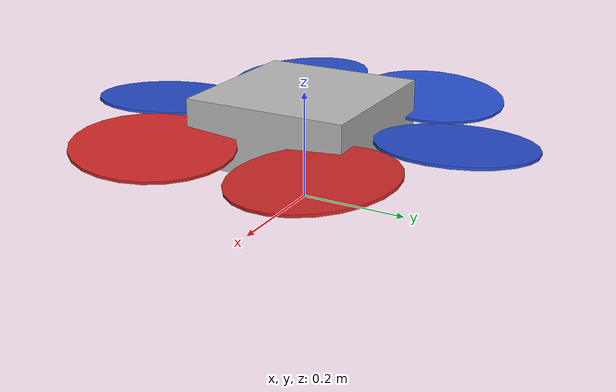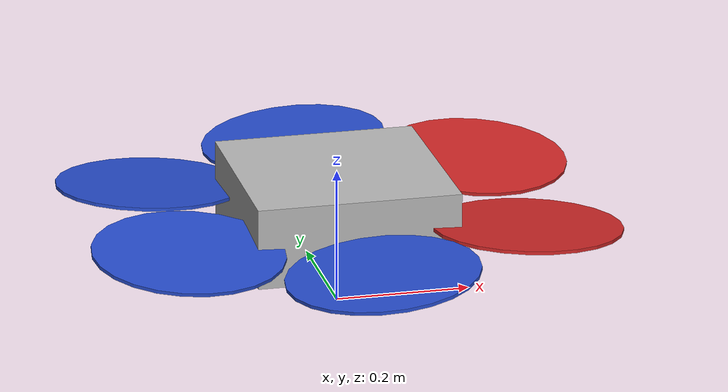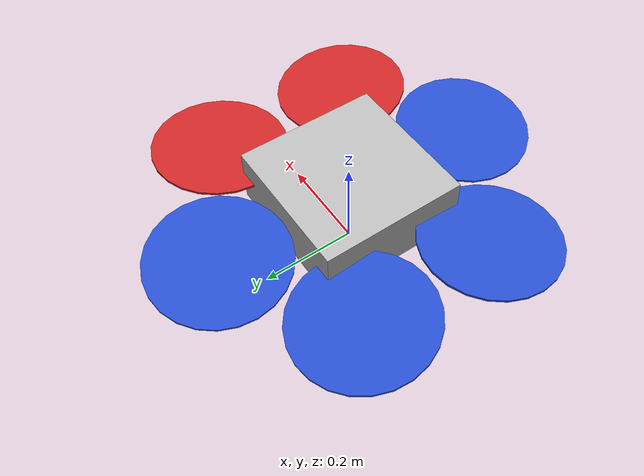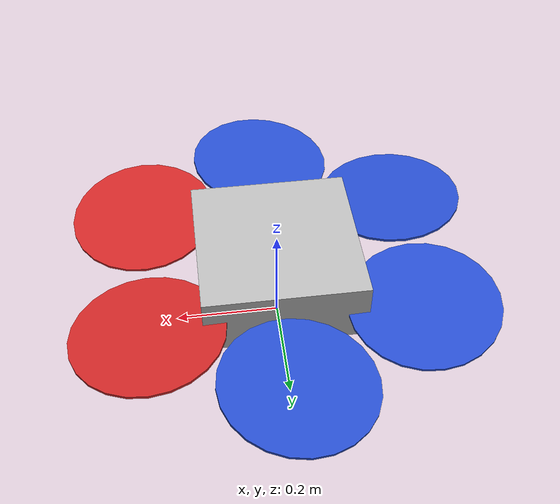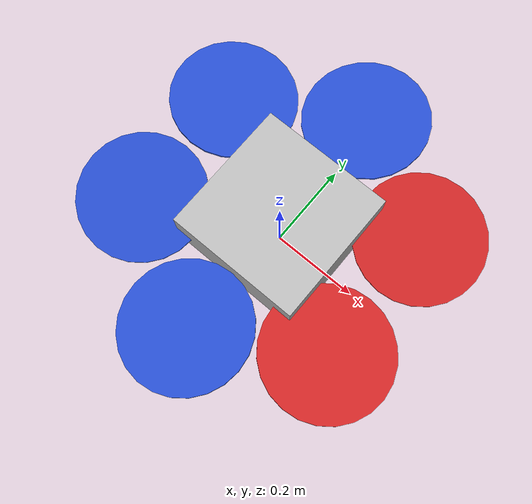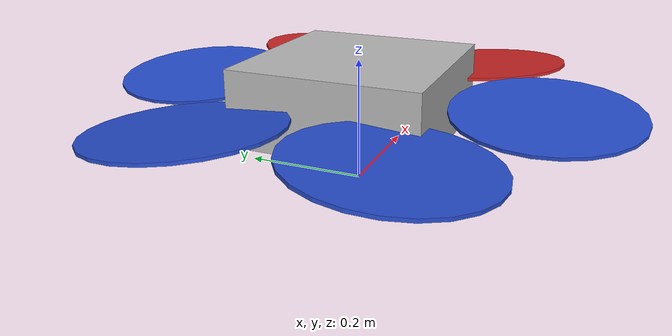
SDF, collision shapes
<?xml version="1.0"?>
<sdf version="1.8">
    <model name="hexrotor">
        <pose>0 0 0.121078 0 0 0</pose>
        <link name="base_link">
            <enable_wind>true</enable_wind>
            <pose frame="">0 0 0 0 -0 0</pose>
            <inertial>
                <pose frame="">0 0 0 0 -0 0</pose>
                <mass>3.42</mass>
                <inertia>
                    <ixx>0.075</ixx>
                    <ixy>0</ixy>
                    <ixz>0</ixz>
                    <iyy>0.075</iyy>
                    <iyz>0</iyz>
                    <izz>0.148916</izz>
                </inertia>
            </inertial>
            <collision name="base_link_inertia_collision">
                <pose frame="">0 0 0.025 0 -0 0</pose>
                <geometry>
                    <box>
                        <size>0.3 0.3 0.12</size>
                    </box>
                </geometry>
            </collision>

            <visual name="base_link_inertia_visual">
                <pose frame="">0 0 0 0 -0 0</pose>
                <geometry>
                    <mesh>
                        <scale>1 1 1</scale>
                        <uri>meshes/hexrotor.dae</uri>
                    </mesh>
                </geometry>
            </visual>
            <visual name="marker_visual_1">
                <pose frame="">-0.1 0 0.077 0 -0.1 0</pose>
                <geometry>
                    <mesh>
                        <scale>1 1 1</scale>
                        <uri>meshes/led.dae</uri>
                    </mesh>
                </geometry>
            </visual>
            <visual name="marker_visual_2">
                <pose frame="">-0.09 0.059 0.059 -0.785397 -0 0.2</pose>
                <geometry>
                    <mesh>
                        <scale>1 1 1</scale>
                        <uri>meshes/led.dae</uri>
                    </mesh>
                </geometry>
            </visual>
            <visual name="marker_visual_3">
                <pose frame="">-0.09 -0.059 0.059 0.785397 -0 -0.2</pose>
                <geometry>
                    <mesh>
                        <scale>1 1 1</scale>
                        <uri>meshes/led.dae</uri>
                    </mesh>
                </geometry>
            </visual>
            <sensor name="imu_sensor" type="imu">
                <always_on>1</always_on>
                <update_rate>250</update_rate>
                <imu>
                    <angular_velocity>
                        <x>
                            <noise type="gaussian">
                                <mean>0</mean>
                                <stddev>0.009</stddev>
                                <bias_mean>0.00075</bias_mean>
                                <bias_stddev>0.005</bias_stddev>
                                <dynamic_bias_stddev>0.00002</dynamic_bias_stddev>
                                <dynamic_bias_correlation_time>400.0</dynamic_bias_correlation_time>
                                <precision>0.00025</precision>
                            </noise>
                        </x>
                        <y>
                            <noise type="gaussian">
                                <mean>0</mean>
                                <stddev>0.009</stddev>
                                <bias_mean>0.00075</bias_mean>
                                <bias_stddev>0.005</bias_stddev>
                                <dynamic_bias_stddev>0.00002</dynamic_bias_stddev>
                                <dynamic_bias_correlation_time>400.0</dynamic_bias_correlation_time>
                                <precision>0.00025</precision>
                            </noise>
                        </y>
                        <z>
                            <noise type="gaussian">
                                <mean>0</mean>
                                <stddev>0.009</stddev>
                                <bias_mean>0.00075</bias_mean>
                                <bias_stddev>0.005</bias_stddev>
                                <dynamic_bias_stddev>0.00002</dynamic_bias_stddev>
                                <dynamic_bias_correlation_time>400.0</dynamic_bias_correlation_time>
                                <precision>0.00025</precision>
                            </noise>
                        </z>
                    </angular_velocity>
                    <linear_acceleration>
                        <x>
                            <noise type="gaussian">
                                <mean>0</mean>
                                <stddev>0.021</stddev>
                                <bias_mean>0.05</bias_mean>
                                <bias_stddev>0.0075</bias_stddev>
                                <dynamic_bias_stddev>0.000375</dynamic_bias_stddev>
                                <dynamic_bias_correlation_time>175.0</dynamic_bias_correlation_time>
                                <precision>0.005</precision>
                            </noise>
                        </x>
                        <y>
                            <noise type="gaussian">
                                <mean>0</mean>
                                <stddev>0.021</stddev>
                                <bias_mean>0.05</bias_mean>
                                <bias_stddev>0.0075</bias_stddev>
                                <dynamic_bias_stddev>0.000375</dynamic_bias_stddev>
                                <dynamic_bias_correlation_time>175.0</dynamic_bias_correlation_time>
                                <precision>0.005</precision>
                            </noise>
                        </y>
                        <z>
                            <noise type="gaussian">
                                <mean>0</mean>
                                <stddev>0.021</stddev>
                                <bias_mean>0.05</bias_mean>
                                <bias_stddev>0.0075</bias_stddev>
                                <dynamic_bias_stddev>0.000375</dynamic_bias_stddev>
                                <dynamic_bias_correlation_time>175.0</dynamic_bias_correlation_time>
                                <precision>0.005</precision>
                            </noise>
                        </z>
                    </linear_acceleration>
                </imu>
            </sensor>
            <sensor name="air_pressure" type="air_pressure">
                <always_on>1</always_on>
                <update_rate>20</update_rate>
                <air_pressure>
                    <reference_altitude>0</reference_altitude>
                    <noise type="gaussian">
                        <mean>0.00000008</mean>
                    </noise>
                </air_pressure>
            </sensor>
            <sensor name="magnetometer" type="magnetometer">
                <always_on>1</always_on>
                <update_rate>20</update_rate>
                <magnetometer>
                    <x>
                        <noise type="gaussian">
                            <mean>0.000000080</mean>
                            <bias_mean>0.000000400</bias_mean>
                        </noise>
                    </x>
                    <y>
                        <noise type="gaussian">
                            <mean>0.000000080</mean>
                            <bias_mean>0.000000400</bias_mean>
                        </noise>
                    </y>
                    <z>
                        <noise type="gaussian">
                            <mean>0.000000080</mean>
                            <bias_mean>0.000000400</bias_mean>
                        </noise>
                    </z>
                </magnetometer>
            </sensor>
        </link>

        <!-- gripper mount point -->
        <frame name="gripper_mount_point">
          <pose>0.0 0 -0.01 0 1.57 0</pose>
        </frame>

        <!-- Front payload slot -->
        <frame name="slot_0">
          <pose>0.15 0 -0.02 0 0 0</pose>
        </frame>

        <!-- Rear payload slot -->
        <frame name="slot_1">
          <pose>-0.14 0 -0.02 0 0 -3.14159</pose>
        </frame>

        <!-- Top payload slot -->
        <frame name="slot_2">
          <pose>0.0 0 0.09 0 -1.57 0</pose>
        </frame>

        <!-- Bottom payload slot -->
        <frame name="slot_3">
          <pose>0.06 0 -0.04 0 1.57 0</pose>
        </frame>

        <!-- Left payload slot -->
        <frame name="slot_4">
          <pose>0.05 0.10 -0.02 0 0 1.57</pose>
        </frame>

        <!-- Right payload slot -->
        <frame name="slot_5">
          <pose>0.05 -0.10 -0.02 0 0 -1.57</pose>
        </frame>

        <!-- Bottom left payload slot -->
        <frame name="slot_6">
          <pose>0.06 0.05 -0.04 0 1.57 0</pose>
        </frame>

        <!-- Bottom right payload slot -->
        <frame name="slot_7">
          <pose>0.06 -0.05 -0.04 0 1.57 0</pose>
        </frame>

        <link name="rotor_0">
            <pose frame="">0.247 0.1506 0.028 0.087267 0 0.523599</pose>
            <inertial>
                <pose frame="">0 0 0 0 -0 0</pose>
                <mass>0.005</mass>
                <inertia>
                    <ixx>9.75e-07</ixx>
                    <ixy>0</ixy>
                    <ixz>0</ixz>
                    <iyy>8.13545e-05</iyy>
                    <iyz>0</iyz>
                    <izz>8.22545e-05</izz>
                </inertia>
            </inertial>
            <collision name="rotor_0_collision">
                <pose frame="">0 0 0 0 -0 0</pose>
                <geometry>
                    <cylinder>
                        <length>0.005</length>
                        <radius>0.1397</radius>
                    </cylinder>
                </geometry>
                <surface>
                    <contact>
                        <ode/>
                    </contact>
                    <friction>
                        <ode/>
                    </friction>
                </surface>
            </collision>
            <visual name="rotor_0_visual">
                <pose frame="">0 0 0 0 -0 0</pose>
                <geometry>
                    <mesh>
                        <scale>1 1 1</scale>
                        <uri>meshes/neo11_propeller_ccw.dae</uri>
                    </mesh>
                </geometry>
                <material>
                    <diffuse>1 0 0 1</diffuse>
                    <script>
                        <name>Gazebo/Red</name>
                        <uri>file://media/materials/scripts/gazebo.material</uri>
                    </script>
                </material>
                <cast_shadows>0</cast_shadows>
            </visual>
            <gravity>1</gravity>
            <velocity_decay/>
        </link>
        <joint name="rotor_0_joint" type="revolute">
            <child>rotor_0</child>
            <parent>base_link</parent>
            <axis>
                <xyz>0 0 1</xyz>
                <limit>
                    <lower>-1e+16</lower>
                    <upper>1e+16</upper>
                </limit>
                <dynamics>
                    <spring_reference>0</spring_reference>
                    <spring_stiffness>0</spring_stiffness>
                </dynamics>
            </axis>
        </joint>
        <link name="rotor_1">
            <pose frame="">-0.00067 0.28929 0.028 0 -0.087267 0</pose>
            <inertial>
                <pose frame="">0 0 0 0 -0 0</pose>
                <mass>0.005</mass>
                <inertia>
                    <ixx>9.75e-07</ixx>
                    <ixy>0</ixy>
                    <ixz>0</ixz>
                    <iyy>8.13545e-05</iyy>
                    <iyz>0</iyz>
                    <izz>8.22545e-05</izz>
                </inertia>
            </inertial>
            <collision name="rotor_1_collision">
                <pose frame="">0 0 0 0 -0 0</pose>
                <geometry>
                    <cylinder>
                        <length>0.005</length>
                        <radius>0.1397</radius>
                    </cylinder>
                </geometry>
                <surface>
                    <contact>
                        <ode/>
                    </contact>
                    <friction>
                        <ode/>
                    </friction>
                </surface>
            </collision>
            <visual name="rotor_1_visual">
                <pose frame="">0 0 0 0 -0 0</pose>
                <geometry>
                    <mesh>
                        <scale>1 1 1</scale>
                        <uri>meshes/neo11_propeller_cw.dae</uri>
                    </mesh>
                </geometry>
                <material>
                    <diffuse>0 0 1 1</diffuse>
                    <script>
                        <name>Gazebo/Blue</name>
                        <uri>file://media/materials/scripts/gazebo.material</uri>
                    </script>
                </material>
                <cast_shadows>0</cast_shadows>
            </visual>
            <gravity>1</gravity>
            <velocity_decay/>
        </link>
        <joint name="rotor_1_joint" type="revolute">
            <child>rotor_1</child>
            <parent>base_link</parent>
            <axis>
                <xyz>0 0 1</xyz>
                <limit>
                    <lower>-1e+16</lower>
                    <upper>1e+16</upper>
                </limit>
                <dynamics>
                    <spring_reference>0</spring_reference>
                    <spring_stiffness>0</spring_stiffness>
                </dynamics>
            </axis>
        </joint>
        <link name="rotor_2">
            <pose frame="">-0.2501 0.1454 0.028 0.087267 -0 2.61799</pose>
            <inertial>
                <pose frame="">0 0 0 0 -0 0</pose>
                <mass>0.005</mass>
                <inertia>
                    <ixx>9.75e-07</ixx>
                    <ixy>0</ixy>
                    <ixz>0</ixz>
                    <iyy>8.13545e-05</iyy>
                    <iyz>0</iyz>
                    <izz>8.22545e-05</izz>
                </inertia>
            </inertial>
            <collision name="rotor_2_collision">
                <pose frame="">0 0 0 0 -0 0</pose>
                <geometry>
                    <cylinder>
                        <length>0.005</length>
                        <radius>0.1397</radius>
                    </cylinder>
                </geometry>
                <surface>
                    <contact>
                        <ode/>
                    </contact>
                    <friction>
                        <ode/>
                    </friction>
                </surface>
            </collision>
            <visual name="rotor_2_visual">
                <pose frame="">0 0 0 0 -0 0</pose>
                <geometry>
                    <mesh>
                        <scale>1 1 1</scale>
                        <uri>meshes/neo11_propeller_ccw.dae</uri>
                    </mesh>
                </geometry>
                <material>
                    <diffuse>0 0 1 1</diffuse>
                    <script>
                        <name>Gazebo/Blue</name>
                        <uri>file://media/materials/scripts/gazebo.material</uri>
                    </script>
                </material>
                <cast_shadows>0</cast_shadows>
            </visual>
            <gravity>1</gravity>
            <velocity_decay/>
        </link>
        <joint name="rotor_2_joint" type="revolute">
            <child>rotor_2</child>
            <parent>base_link</parent>
            <axis>
                <xyz>0 0 1</xyz>
                <limit>
                    <lower>-1e+16</lower>
                    <upper>1e+16</upper>
                </limit>
                <dynamics>
                    <spring_reference>0</spring_reference>
                    <spring_stiffness>0</spring_stiffness>
                </dynamics>
            </axis>
        </joint>
        <link name="rotor_3">
            <pose frame="">-0.2501 -0.1454 0.028 -0.087267 -0 -2.61799</pose>
            <inertial>
                <pose frame="">0 0 0 0 -0 0</pose>
                <mass>0.005</mass>
                <inertia>
                    <ixx>9.75e-07</ixx>
                    <ixy>0</ixy>
                    <ixz>0</ixz>
                    <iyy>8.13545e-05</iyy>
                    <iyz>0</iyz>
                    <izz>8.22545e-05</izz>
                </inertia>
            </inertial>
            <collision name="rotor_3_collision">
                <pose frame="">0 0 0 0 -0 0</pose>
                <geometry>
                    <cylinder>
                        <length>0.005</length>
                        <radius>0.1397</radius>
                    </cylinder>
                </geometry>
                <surface>
                    <contact>
                        <ode/>
                    </contact>
                    <friction>
                        <ode/>
                    </friction>
                </surface>
            </collision>
            <visual name="rotor_3_visual">
                <pose frame="">0 0 0 0 -0 0</pose>
                <geometry>
                    <mesh>
                        <scale>1 1 1</scale>
                        <uri>meshes/neo11_propeller_cw.dae</uri>
                    </mesh>
                </geometry>
                <material>
                    <diffuse>0 0 1 1</diffuse>
                    <script>
                        <name>Gazebo/Blue</name>
                        <uri>file://media/materials/scripts/gazebo.material</uri>
                    </script>
                </material>
                <cast_shadows>0</cast_shadows>
            </visual>
            <gravity>1</gravity>
            <velocity_decay/>
        </link>
        <joint name="rotor_3_joint" type="revolute">
            <child>rotor_3</child>
            <parent>base_link</parent>
            <axis>
                <xyz>0 0 1</xyz>
                <limit>
                    <lower>-1e+16</lower>
                    <upper>1e+16</upper>
                </limit>
                <dynamics>
                    <spring_reference>0</spring_reference>
                    <spring_stiffness>0</spring_stiffness>
                </dynamics>
            </axis>
        </joint>
        <link name="rotor_4">
            <pose frame="">-0.00067 -0.28929 0.028 -0 0.087267 -3.14159</pose>
            <inertial>
                <pose frame="">0 0 0 0 -0 0</pose>
                <mass>0.005</mass>
                <inertia>
                    <ixx>9.75e-07</ixx>
                    <ixy>0</ixy>
                    <ixz>0</ixz>
                    <iyy>8.13545e-05</iyy>
                    <iyz>0</iyz>
                    <izz>8.22545e-05</izz>
                </inertia>
            </inertial>
            <collision name="rotor_4_collision">
                <pose frame="">0 0 0 0 -0 0</pose>
                <geometry>
                    <cylinder>
                        <length>0.005</length>
                        <radius>0.1397</radius>
                    </cylinder>
                </geometry>
                <surface>
                    <contact>
                        <ode/>
                    </contact>
                    <friction>
                        <ode/>
                    </friction>
                </surface>
            </collision>
            <visual name="rotor_4_visual">
                <pose frame="">0 0 0 0 -0 0</pose>
                <geometry>
                    <mesh>
                        <scale>1 1 1</scale>
                        <uri>meshes/neo11_propeller_ccw.dae</uri>
                    </mesh>
                </geometry>
                <material>
                    <diffuse>0 0 1 1</diffuse>
                    <script>
                        <name>Gazebo/Blue</name>
                        <uri>file://media/materials/scripts/gazebo.material</uri>
                    </script>
                </material>
                <cast_shadows>0</cast_shadows>
            </visual>
            <gravity>1</gravity>
            <velocity_decay/>
        </link>
        <joint name="rotor_4_joint" type="revolute">
            <child>rotor_4</child>
            <parent>base_link</parent>
            <axis>
                <xyz>0 0 1</xyz>
                <limit>
                    <lower>-1e+16</lower>
                    <upper>1e+16</upper>
                </limit>
                <dynamics>
                    <spring_reference>0</spring_reference>
                    <spring_stiffness>0</spring_stiffness>
                </dynamics>
            </axis>
        </joint>
        <link name="rotor_5">
            <pose frame="">0.247 -0.1506 0.028 -0.087267 0 -0.523599</pose>
            <inertial>
                <pose frame="">0 0 0 0 -0 0</pose>
                <mass>0.005</mass>
                <inertia>
                    <ixx>9.75e-07</ixx>
                    <ixy>0</ixy>
                    <ixz>0</ixz>
                    <iyy>8.13545e-05</iyy>
                    <iyz>0</iyz>
                    <izz>8.22545e-05</izz>
                </inertia>
            </inertial>
            <collision name="rotor_5_collision">
                <pose frame="">0 0 0 0 -0 0</pose>
                <geometry>
                    <cylinder>
                        <length>0.005</length>
                        <radius>0.1397</radius>
                    </cylinder>
                </geometry>
                <surface>
                    <contact>
                        <ode/>
                    </contact>
                    <friction>
                        <ode/>
                    </friction>
                </surface>
            </collision>
            <visual name="rotor_5_visual">
                <pose frame="">0 0 0 0 -0 0</pose>
                <geometry>
                    <mesh>
                        <scale>1 1 1</scale>
                        <uri>meshes/neo11_propeller_cw.dae</uri>
                    </mesh>
                </geometry>
                <material>
                    <diffuse>1 0 0 1</diffuse>
                    <script>
                        <name>Gazebo/Red</name>
                        <uri>file://media/materials/scripts/gazebo.material</uri>
                    </script>
                </material>
                <cast_shadows>0</cast_shadows>
            </visual>
            <gravity>1</gravity>
            <velocity_decay/>
        </link>
        <joint name="rotor_5_joint" type="revolute">
            <child>rotor_5</child>
            <parent>base_link</parent>
            <axis>
                <xyz>0 0 1</xyz>
                <limit>
                    <lower>-1e+16</lower>
                    <upper>1e+16</upper>
                </limit>
                <dynamics>
                    <spring_reference>0</spring_reference>
                    <spring_stiffness>0</spring_stiffness>
                </dynamics>
            </axis>
        </joint>

        <!-- uncomment to debug sensor slot frames -->
    </model>
</sdf>
